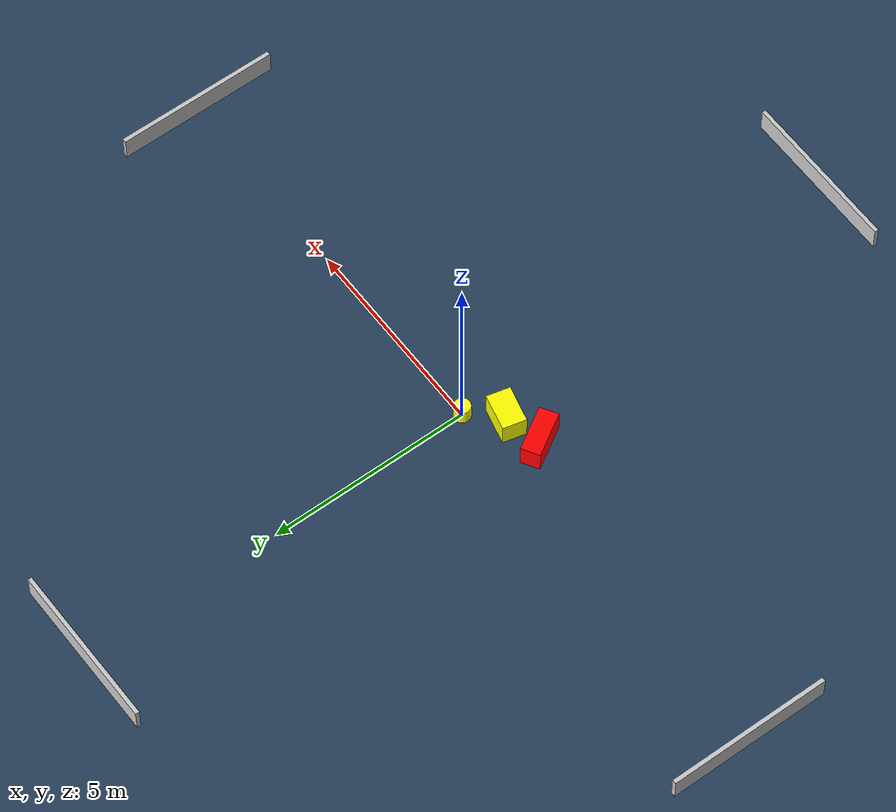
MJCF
<?xml version="1.0" ?>
<mujoco model="generated_environment">
  <option timestep="0.01" integrator="RK4" cone="elliptic"/>
  <default>
    <geom density="1"/>
  </default>
  <asset>
    <texture builtin="gradient" height="3072" name="skybox" rgb1="0.3 0.5 0.7" rgb2="0 0 0" type="skybox" width="512"/>
    <texture builtin="checker" height="300" name="groundplane" rgb1="0.2 0.3 0.4" rgb2="0.1 0.2 0.3" type="2d" width="300"/>
    <material name="groundplane" reflectance="0.2" texrepeat="5 5" texture="groundplane"/>
  </asset>
  <worldbody>
    <light dir="0 0 -1" directional="true" pos="0 0 1.5"/>
    <geom condim="3" friction="0.5 0.005 0.001" material="groundplane" name="floor" pos="0 0 0" size="0 0 0.05" type="plane"/>
    <body name="walls">
      <geom name="wall_1" condim="4" pos="-10.0 0.0 0.3" rgba="0.800000011920929 0.800000011920929 0.800000011920929 1.0" size="0.05 2.0 0.3" type="box"/>
      <geom name="wall_2" condim="4" pos="10.0 0.0 0.3" rgba="0.800000011920929 0.800000011920929 0.800000011920929 1.0" size="0.05 2.0 0.3" type="box"/>
      <geom name="wall_3" condim="4" pos="0.0 -10.0 0.3" rgba="0.800000011920929 0.800000011920929 0.800000011920929 1.0" size="2.0 0.05 0.3" type="box"/>
      <geom name="wall_4" condim="4" pos="0.0 10.0 0.3" rgba="0.800000011920929 0.800000011920929 0.800000011920929 1.0" size="2.0 0.05 0.3" type="box"/>
    </body>
    <body name="robot">
      <joint name="joint_x" type="slide" pos="0 0 0" axis="1 0 0"/>
      <joint name="joint_y" type="slide" pos="0 0 0" axis="0 1 0"/>
      <geom name="robot" type="cylinder" pos="0.0 0.0 0.2" size="0.2 0.2 0.0" mass="5.0" friction="1.0 0.005 0.0001" condim="4" rgba="1.0 1.0 0.0 1.0"/>
    </body>
    <body name="obstacle_1_movable">
      <geom name="obstacle_1_movable" condim="4" pos="-0.7145789663455699 -0.6626604652634086 0.3" euler="0 0 256.58624789149206" friction="0.0 0.005 0.001" rgba="1.0 1.0 0.0 1.0" size="0.2901582013844387 0.4478356634154403 0.3" type="box" mass="0.1"/>
      <joint type="free"/>
    </body>
    <body name="obstacle_2_static">
      <geom name="obstacle_2_static" condim="4" pos="-1.6139116108230258 -0.8898289071932381 0.3" euler="0 0 121.39411984742978" friction="0.0 0.005 0.001" rgba="1.0 0.0 0.0 1.0" size="0.5608547212070856 0.23324329534208363 0.3" type="box"/>
    </body>
  </worldbody>
  <actuator>
    <motor name="actuator_x" joint="joint_x" gear="1" ctrlrange="-1 1"/>
    <motor name="actuator_y" joint="joint_y" gear="1" ctrlrange="-1 1"/>
  </actuator>
</mujoco>
